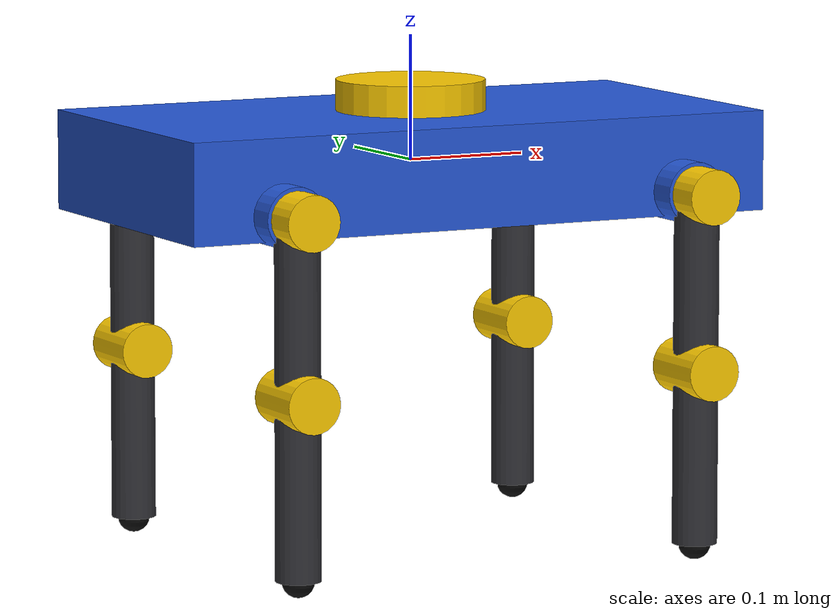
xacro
<?xml version="1.0"?>
<robot name="quadbot" xmlns:xacro="http://www.ros.org/wiki/xacro">
  <xacro:property name="lidar_visualize" value="false"/>
  <xacro:include filename="$(find champbot_nodes)/urdf/robot.urdf.xacro"/>
</robot>

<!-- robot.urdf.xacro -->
<robot name="quadbot" xmlns:xacro="http://www.ros.org/wiki/xacro">

  <!-- Whether the Gazebo lidar draws its blue scan rays. Overridable: a wrapper
       URDF (or xacro arg) can set this false to hide the rays. Defaults true so
       existing launches are unchanged. -->
  <xacro:property name="lidar_visualize" default="true"/>

  <!-- ============================ dimensions ============================ -->
  <xacro:property name="body_len"  value="0.50"/>
  <xacro:property name="body_wid"  value="0.26"/>
  <xacro:property name="body_hgt"  value="0.08"/>
  <xacro:property name="body_mass" value="3.0"/>

  <xacro:property name="hip_off"   value="0.05"/>   <!-- lateral hip -> upper leg -->
  <xacro:property name="upper_len" value="0.14"/>
  <xacro:property name="lower_len" value="0.14"/>
  <xacro:property name="leg_rad"   value="0.018"/>
  <xacro:property name="foot_rad"  value="0.013"/>

  <xacro:property name="hip_x" value="0.175"/>
  <xacro:property name="hip_y" value="0.105"/>
  <xacro:property name="hip_z" value="-0.02"/>

  <xacro:property name="j_eff" value="25.0"/>
  <xacro:property name="j_vel" value="1.5"/>

  <!-- ============================ materials ============================= -->
  <material name="body_blue"><color rgba="0.15 0.35 0.85 1"/></material>
  <material name="leg_dark"><color rgba="0.2 0.2 0.22 1"/></material>
  <material name="foot_grey"><color rgba="0.05 0.05 0.05 1"/></material>
  <material name="joint_yellow"><color rgba="1.0 0.8 0.0 1"/></material>

  <!-- ========================== inertia helpers ======================== -->
  <xacro:macro name="box_inertia" params="m x y z">
    <inertia ixx="${m*(y*y+z*z)/12.0}" ixy="0" ixz="0"
             iyy="${m*(x*x+z*z)/12.0}" iyz="0"
             izz="${m*(x*x+y*y)/12.0}"/>
  </xacro:macro>
  <xacro:macro name="cyl_inertia" params="m r l">
    <inertia ixx="${m*(3.0*r*r+l*l)/12.0}" ixy="0" ixz="0"
             iyy="${m*(3.0*r*r+l*l)/12.0}" iyz="0"
             izz="${m*r*r/2.0}"/>
  </xacro:macro>
  <xacro:macro name="sphere_inertia" params="m r">
    <inertia ixx="${0.4*m*r*r}" ixy="0" ixz="0"
             iyy="${0.4*m*r*r}" iyz="0" izz="${0.4*m*r*r}"/>
  </xacro:macro>

  <!-- ============================== body =============================== -->
  <link name="base_link">
    <visual>
      <geometry><box size="${body_len} ${body_wid} ${body_hgt}"/></geometry>
      <material name="body_blue"/>
    </visual>
    <collision>
      <geometry><box size="${body_len} ${body_wid} ${body_hgt}"/></geometry>
    </collision>
    <inertial>
      <mass value="${body_mass}"/>
      <xacro:box_inertia m="${body_mass}" x="${body_len}" y="${body_wid}" z="${body_hgt}"/>
    </inertial>
  </link>

  <!-- =============================== leg =============================== -->
  <!-- prefix lf/rf/lh/rh, (px,py) hip mount, ydir +1 left / -1 right -->
  <xacro:macro name="leg" params="prefix px py ydir">

    <!-- hip abduction joint (axis X) -->
    <joint name="${prefix}_hip_joint" type="revolute">
      <parent link="base_link"/>
      <child  link="${prefix}_hip_link"/>
      <origin xyz="${px} ${py} ${hip_z}" rpy="0 0 0"/>
      <axis xyz="1 0 0"/>
      <limit lower="-0.8" upper="0.8" effort="${j_eff}" velocity="${j_vel}"/>
      <dynamics damping="0.2" friction="0.0"/>
    </joint>
    <link name="${prefix}_hip_link">
      <visual>
        <origin xyz="0 ${ydir*hip_off/2} 0" rpy="1.5708 0 0"/>
        <geometry><cylinder radius="0.025" length="${hip_off}"/></geometry>
        <material name="body_blue"/>
      </visual>
      <collision>
        <origin xyz="0 ${ydir*hip_off/2} 0" rpy="1.5708 0 0"/>
        <geometry><cylinder radius="0.025" length="${hip_off}"/></geometry>
      </collision>
      <inertial>
        <origin xyz="0 ${ydir*hip_off/2} 0"/>
        <mass value="0.2"/>
        <xacro:box_inertia m="0.2" x="0.05" y="${hip_off}" z="0.05"/>
      </inertial>
      <!-- joint marker, hip turns about X so the rod lies along X -->
      <visual>
        <origin xyz="0 0 0" rpy="0 1.5708 0"/>
        <geometry><cylinder radius="0.022" length="0.075"/></geometry>
        <material name="joint_yellow"/>
      </visual>
    </link>

    <!-- upper leg pitch joint (axis Y) -->
    <joint name="${prefix}_upper_leg_joint" type="revolute">
      <parent link="${prefix}_hip_link"/>
      <child  link="${prefix}_upper_leg_link"/>
      <origin xyz="0 ${ydir*hip_off} 0" rpy="0 0 0"/>
      <axis xyz="0 1 0"/>
      <limit lower="-1.57" upper="1.57" effort="${j_eff}" velocity="${j_vel}"/>
      <dynamics damping="0.2" friction="0.0"/>
    </joint>
    <link name="${prefix}_upper_leg_link">
      <visual>
        <origin xyz="0 0 ${-upper_len/2}" rpy="0 0 0"/>
        <geometry><cylinder radius="${leg_rad}" length="${upper_len}"/></geometry>
        <material name="leg_dark"/>
      </visual>
      <collision>
        <origin xyz="0 0 ${-upper_len/2}" rpy="0 0 0"/>
        <geometry><cylinder radius="${leg_rad}" length="${upper_len}"/></geometry>
      </collision>
      <inertial>
        <origin xyz="0 0 ${-upper_len/2}"/>
        <mass value="0.25"/>
        <xacro:cyl_inertia m="0.25" r="${leg_rad}" l="${upper_len}"/>
      </inertial>
      <!-- joint marker, pitch about Y so the rod lies along Y -->
      <visual>
        <origin xyz="0 0 0" rpy="1.5708 0 0"/>
        <geometry><cylinder radius="0.022" length="0.06"/></geometry>
        <material name="joint_yellow"/>
      </visual>
    </link>

    <!-- lower leg / knee pitch joint (axis Y) -->
    <joint name="${prefix}_lower_leg_joint" type="revolute">
      <parent link="${prefix}_upper_leg_link"/>
      <child  link="${prefix}_lower_leg_link"/>
      <origin xyz="0 0 ${-upper_len}" rpy="0 0 0"/>
      <axis xyz="0 1 0"/>
      <limit lower="-1.57" upper="1.57" effort="${j_eff}" velocity="${j_vel}"/>
      <dynamics damping="0.2" friction="0.0"/>
    </joint>
    <link name="${prefix}_lower_leg_link">
      <visual>
        <origin xyz="0 0 ${-lower_len/2}" rpy="0 0 0"/>
        <geometry><cylinder radius="${leg_rad}" length="${lower_len}"/></geometry>
        <material name="leg_dark"/>
      </visual>
      <collision>
        <origin xyz="0 0 ${-lower_len/2}" rpy="0 0 0"/>
        <geometry><cylinder radius="${leg_rad}" length="${lower_len}"/></geometry>
      </collision>
      <inertial>
        <origin xyz="0 0 ${-lower_len/2}"/>
        <mass value="0.2"/>
        <xacro:cyl_inertia m="0.2" r="${leg_rad}" l="${lower_len}"/>
      </inertial>
      <visual>
        <origin xyz="0 0 0" rpy="1.5708 0 0"/>
        <geometry><cylinder radius="0.022" length="0.06"/></geometry>
        <material name="joint_yellow"/>
      </visual>
    </link>

    <!-- foot (fixed, point contact) -->
    <joint name="${prefix}_foot_joint" type="fixed">
      <parent link="${prefix}_lower_leg_link"/>
      <child  link="${prefix}_foot_link"/>
      <origin xyz="0 0 ${-lower_len}" rpy="0 0 0"/>
    </joint>
    <link name="${prefix}_foot_link">
      <visual>
        <origin xyz="0 0 0" rpy="0 0 0"/>
        <geometry><sphere radius="${foot_rad}"/></geometry>
        <material name="foot_grey"/>
      </visual>
      <collision>
        <origin xyz="0 0 0" rpy="0 0 0"/>
        <geometry><sphere radius="${foot_rad}"/></geometry>
      </collision>
    </link>
    <gazebo reference="${prefix}_foot_link">
      <mu1>1.2</mu1>
      <mu2>1.2</mu2>
      <kp>10000.0</kp>
      <kd>3.0</kd>
      <minDepth>0.001</minDepth>
    </gazebo>
  </xacro:macro>

  <xacro:leg prefix="lf" px="${ hip_x}" py="${ hip_y}" ydir="1"/>
  <xacro:leg prefix="rf" px="${ hip_x}" py="${-hip_y}" ydir="-1"/>
  <xacro:leg prefix="lh" px="${-hip_x}" py="${ hip_y}" ydir="1"/>
  <xacro:leg prefix="rh" px="${-hip_x}" py="${-hip_y}" ydir="-1"/>

  <!-- LIDAR  -->
  <link name="lidar_link">
    <visual>
      <origin xyz="0 0 0" rpy="0 0 0"/>
      <geometry><cylinder radius="0.06" length="0.03"/></geometry>
      <material name="joint_yellow"/>
    </visual>
    <inertial>
      <mass value="0.1"/>
      <xacro:cyl_inertia m="0.1" r="0.03" l="0.02"/>
    </inertial>
  </link>

  <joint name="lidar_joint" type="fixed">
    <parent link="base_link"/>
    <child  link="lidar_link"/>
    <origin xyz="0 0 0.05" rpy="0 0 0"/>
  </joint>

  <gazebo reference="lidar_link">
        <sensor type="ray" name="lidar">
            <pose>0 0 0 0 0 0</pose>
            <always_on>true</always_on>
            <visualize>${str(lidar_visualize).lower()}</visualize>
            <update_rate>10</update_rate>
            <ray>
            <scan>
                <horizontal>
                <samples>360</samples>
                <min_angle>-3.14159</min_angle>
                <max_angle>3.14159</max_angle>
                </horizontal>
            </scan>
            <range>
                <min>0.15</min>
                <max>12.0</max>
            </range>
            </ray>
            <plugin name="lidar_plugin" filename="libgazebo_ros_ray_sensor.so">
            <ros>
                <remapping>~/out:=scan</remapping>
            </ros>
            <output_type>sensor_msgs/LaserScan</output_type>
            <frame_name>lidar_link</frame_name>
            </plugin>
        </sensor>
    </gazebo>

  <!-- CHAMP / Gazebo integration (mirrors chvmp go2_description/xacro).      -->
  <!-- The CHAMP setup assistant only needs the kinematic chain above; this   -->
  <!-- section is purely for running the robot in Gazebo Classic under the    -->
  <!-- CHAMP controller. It is wired for the EFFORT controller that           -->
  <!-- champ_gazebo loads (joint_group_effort_controller), and the PID gains  -->
  <!-- live in quadbot_config/config/ros_control/ros_control.yaml.            -->

  <!-- ros2_control hardware: gazebo_ros2_control GazeboSystem, EFFORT command -->
  <xacro:macro name="leg_ctrl" params="prefix">
    <joint name="${prefix}_hip_joint">
      <command_interface name="effort"/>
      <state_interface name="position"/>
      <state_interface name="velocity"/>
      <state_interface name="effort"/>
    </joint>
    <joint name="${prefix}_upper_leg_joint">
      <command_interface name="effort"/>
      <state_interface name="position"/>
      <state_interface name="velocity"/>
      <state_interface name="effort"/>
    </joint>
    <joint name="${prefix}_lower_leg_joint">
      <command_interface name="effort"/>
      <state_interface name="position"/>
      <state_interface name="velocity"/>
      <state_interface name="effort"/>
    </joint>
  </xacro:macro>

  <ros2_control name="GazeboSystem" type="system">
    <hardware>
      <plugin>gazebo_ros2_control/GazeboSystem</plugin>
    </hardware>
    <xacro:leg_ctrl prefix="lf"/>
    <xacro:leg_ctrl prefix="rf"/>
    <xacro:leg_ctrl prefix="lh"/>
    <xacro:leg_ctrl prefix="rh"/>
  </ros2_control>

  <!-- controller_manager + controller params (loaded by the plugin below) -->
  <gazebo>
    <plugin filename="libgazebo_ros2_control.so" name="gazebo_ros2_control">
      <parameters>$(find quadbot_config)/config/ros_control/ros_control.yaml</parameters>
    </plugin>
  </gazebo>

  <!-- ground-truth odometry (champ state estimation / robot_localization) -->
  <gazebo>
    <plugin name="p3d_base_controller" filename="libgazebo_ros_p3d.so">
      <ros>
        <remapping>odom:=odom/ground_truth</remapping>
      </ros>
      <body_name>base_link</body_name>
      <frame_name>world</frame_name>
      <update_rate>10.0</update_rate>
      <gaussian_noise>0.01</gaussian_noise>
    </plugin>
  </gazebo>

  <!-- IMU link + sensor (feeds champ state estimation) -->
  <joint name="imu_joint" type="fixed">
    <parent link="base_link"/>
    <child link="imu_link"/>
    <origin xyz="0 0 0" rpy="0 0 0"/>
  </joint>
  <link name="imu_link">
    <inertial>
      <mass value="0.001"/>
      <origin xyz="0 0 0" rpy="0 0 0"/>
      <inertia ixx="0.0001" ixy="0" ixz="0" iyy="0.0001" iyz="0" izz="0.0001"/>
    </inertial>
  </link>
  <gazebo reference="imu_link">
    <sensor name="imu_sensor" type="imu">
      <always_on>true</always_on>
      <update_rate>100</update_rate>
      <plugin name="imu_plugin" filename="libgazebo_ros_imu_sensor.so">
        <ros>
          <namespace>imu</namespace>
          <remapping>~/out:=data</remapping>
        </ros>
        <initial_orientation_as_reference>false</initial_orientation_as_reference>
      </plugin>
    </sensor>
  </gazebo>

</robot>
